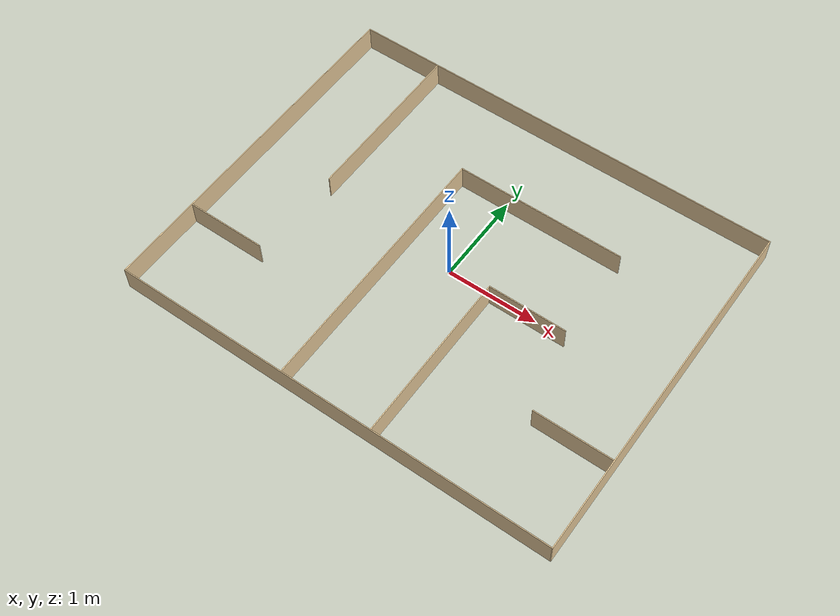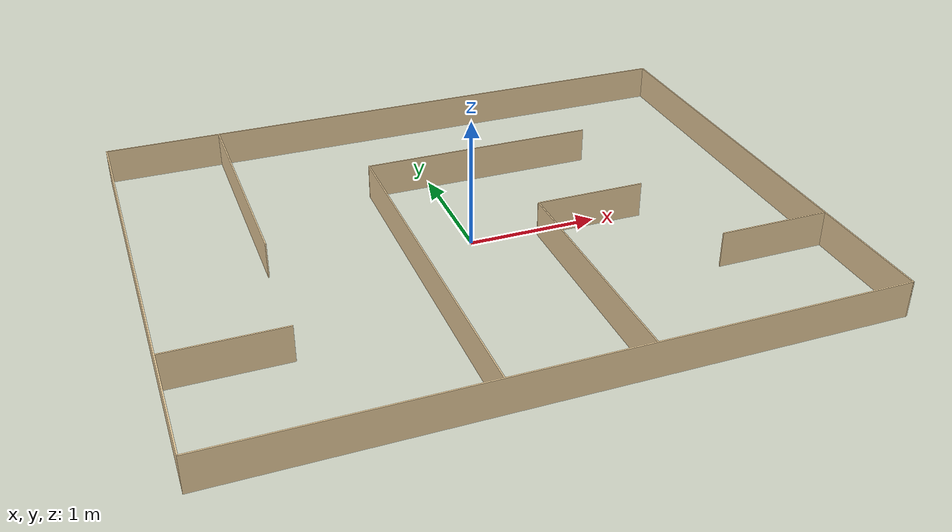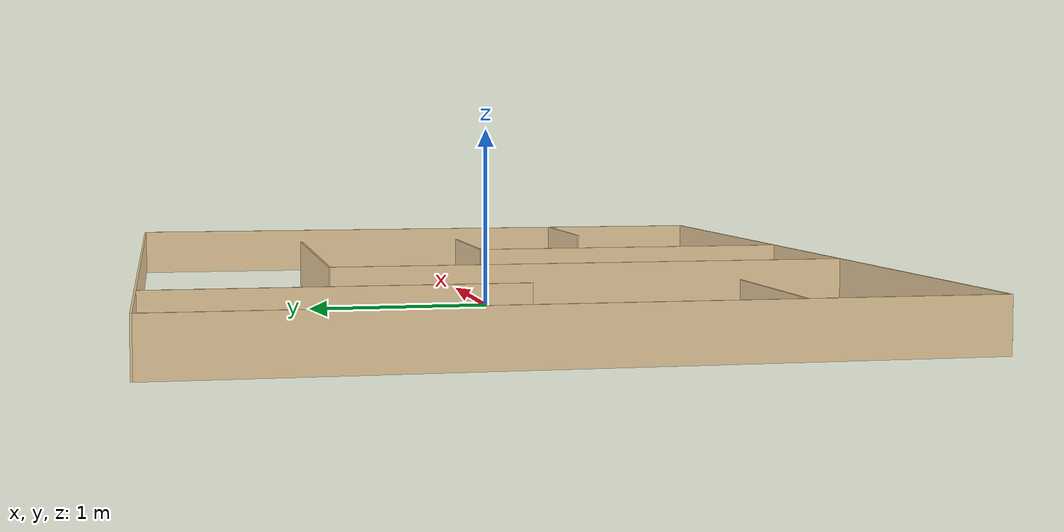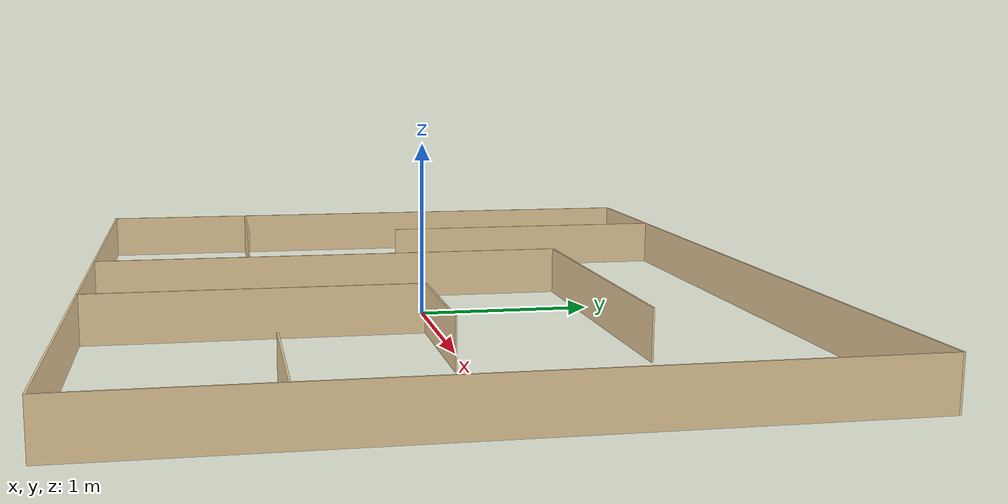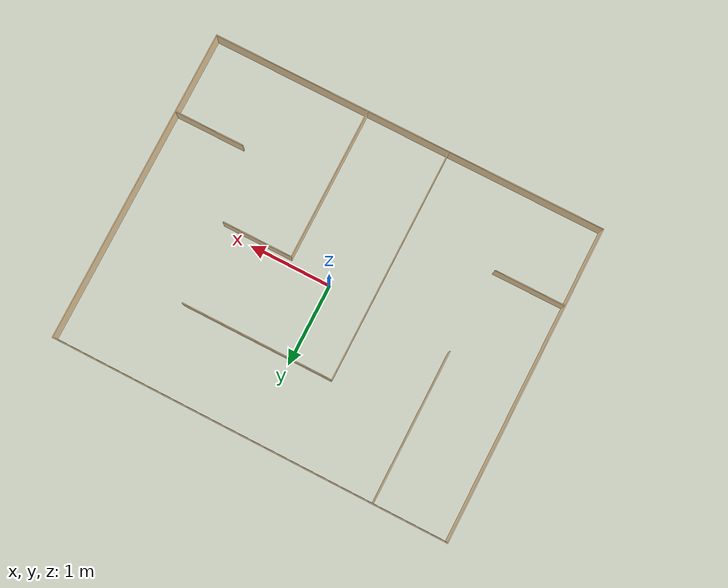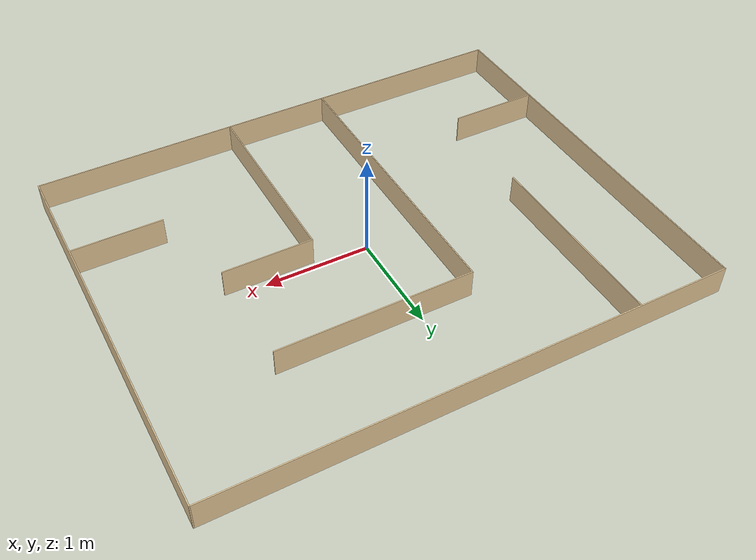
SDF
<?xml version='1.0'?>
<sdf version='1.6'>
  <model name='maze_4'>
    <link name='Wall_0'>
      <pose frame=''>0 -1.925 0 0 -0 0</pose>
      <self_collide>0</self_collide>
      <kinematic>0</kinematic>
      <visual name='Wall_0_Visual'>
        <pose frame=''>0 0 0.14 0 -0 0</pose>
        <geometry>
          <box>
            <size>4.86 0.01 0.28</size>
          </box>
        </geometry>
        <material>
          <script>
            <uri>file://media/materials/scripts/gazebo.material</uri>
            <name>Gazebo/Grey</name>
          </script>
          <ambient>0.921569 0.807843 0.615686 1</ambient>
          <diffuse>0.7 0.7 0.7 1</diffuse>
          <specular>0.01 0.01 0.01 1</specular>
          <emissive>0 0 0 1</emissive>
        </material>
        <cast_shadows>1</cast_shadows>
        <transparency>0</transparency>
      </visual>
      <collision name='Wall_0_Collision'>
        <laser_retro>0</laser_retro>
        <max_contacts>10</max_contacts>
        <pose frame=''>0 0 0.14 0 -0 0</pose>
        <geometry>
          <box>
            <size>4.86 0.01 0.28</size>
          </box>
        </geometry>
        <surface>
          <friction>
            <ode>
              <mu>1</mu>
              <mu2>1</mu2>
              <fdir1>0 0 0</fdir1>
              <slip1>0</slip1>
              <slip2>0</slip2>
            </ode>
            <torsional>
              <coefficient>1</coefficient>
              <patch_radius>0</patch_radius>
              <surface_radius>0</surface_radius>
              <use_patch_radius>1</use_patch_radius>
              <ode>
                <slip>0</slip>
              </ode>
            </torsional>
          </friction>
          <bounce>
            <restitution_coefficient>0</restitution_coefficient>
            <threshold>1e+06</threshold>
          </bounce>
          <contact>
            <collide_without_contact>0</collide_without_contact>
            <collide_without_contact_bitmask>1</collide_without_contact_bitmask>
            <collide_bitmask>1</collide_bitmask>
            <ode>
              <soft_cfm>0</soft_cfm>
              <soft_erp>0.2</soft_erp>
              <kp>1e+13</kp>
              <kd>1</kd>
              <max_vel>0.01</max_vel>
              <min_depth>0</min_depth>
            </ode>
            <bullet>
              <split_impulse>1</split_impulse>
              <split_impulse_penetration_threshold>-0.01</split_impulse_penetration_threshold>
              <soft_cfm>0</soft_cfm>
              <soft_erp>0.2</soft_erp>
              <kp>1e+13</kp>
              <kd>1</kd>
            </bullet>
          </contact>
        </surface>
      </collision>
    </link>
    <link name='Wall_1'>
      <pose frame=''>2.425 0 0 0 -0 1.5708</pose>
      <self_collide>0</self_collide>
      <kinematic>0</kinematic>
      <visual name='Wall_1_Visual'>
        <pose frame=''>0 0 0.14 0 -0 0</pose>
        <geometry>
          <box>
            <size>3.86 0.01 0.28</size>
          </box>
        </geometry>
        <material>
          <script>
            <uri>file://media/materials/scripts/gazebo.material</uri>
            <name>Gazebo/Grey</name>
          </script>
          <ambient>0.921569 0.807843 0.615686 1</ambient>
          <diffuse>0.7 0.7 0.7 1</diffuse>
          <specular>0.01 0.01 0.01 1</specular>
          <emissive>0 0 0 1</emissive>
        </material>
        <cast_shadows>1</cast_shadows>
        <transparency>0</transparency>
      </visual>
      <collision name='Wall_1_Collision'>
        <laser_retro>0</laser_retro>
        <max_contacts>10</max_contacts>
        <pose frame=''>0 0 0.14 0 -0 0</pose>
        <geometry>
          <box>
            <size>3.86 0.01 0.28</size>
          </box>
        </geometry>
        <surface>
          <friction>
            <ode>
              <mu>1</mu>
              <mu2>1</mu2>
              <fdir1>0 0 0</fdir1>
              <slip1>0</slip1>
              <slip2>0</slip2>
            </ode>
            <torsional>
              <coefficient>1</coefficient>
              <patch_radius>0</patch_radius>
              <surface_radius>0</surface_radius>
              <use_patch_radius>1</use_patch_radius>
              <ode>
                <slip>0</slip>
              </ode>
            </torsional>
          </friction>
          <bounce>
            <restitution_coefficient>0</restitution_coefficient>
            <threshold>1e+06</threshold>
          </bounce>
          <contact>
            <collide_without_contact>0</collide_without_contact>
            <collide_without_contact_bitmask>1</collide_without_contact_bitmask>
            <collide_bitmask>1</collide_bitmask>
            <ode>
              <soft_cfm>0</soft_cfm>
              <soft_erp>0.2</soft_erp>
              <kp>1e+13</kp>
              <kd>1</kd>
              <max_vel>0.01</max_vel>
              <min_depth>0</min_depth>
            </ode>
            <bullet>
              <split_impulse>1</split_impulse>
              <split_impulse_penetration_threshold>-0.01</split_impulse_penetration_threshold>
              <soft_cfm>0</soft_cfm>
              <soft_erp>0.2</soft_erp>
              <kp>1e+13</kp>
              <kd>1</kd>
            </bullet>
          </contact>
        </surface>
      </collision>
    </link>
    <link name='Wall_10'>
      <pose frame=''>0.413 0.938753 0 0 -0 0</pose>
      <self_collide>0</self_collide>
      <kinematic>0</kinematic>
      <visual name='Wall_10_Visual'>
        <pose frame=''>0 0 0.14 0 -0 0</pose>
        <geometry>
          <box>
            <size>1.85977 0.01 0.28</size>
          </box>
        </geometry>
        <material>
          <script>
            <uri>file://media/materials/scripts/gazebo.material</uri>
            <name>Gazebo/Grey</name>
          </script>
          <ambient>0.921569 0.807843 0.615686 1</ambient>
          <diffuse>0.7 0.7 0.7 1</diffuse>
          <specular>0.01 0.01 0.01 1</specular>
          <emissive>0 0 0 1</emissive>
        </material>
        <cast_shadows>1</cast_shadows>
        <transparency>0</transparency>
      </visual>
      <collision name='Wall_10_Collision'>
        <laser_retro>0</laser_retro>
        <max_contacts>10</max_contacts>
        <pose frame=''>0 0 0.14 0 -0 0</pose>
        <geometry>
          <box>
            <size>1.85977 0.01 0.28</size>
          </box>
        </geometry>
        <surface>
          <friction>
            <ode>
              <mu>1</mu>
              <mu2>1</mu2>
              <fdir1>0 0 0</fdir1>
              <slip1>0</slip1>
              <slip2>0</slip2>
            </ode>
            <torsional>
              <coefficient>1</coefficient>
              <patch_radius>0</patch_radius>
              <surface_radius>0</surface_radius>
              <use_patch_radius>1</use_patch_radius>
              <ode>
                <slip>0</slip>
              </ode>
            </torsional>
          </friction>
          <bounce>
            <restitution_coefficient>0</restitution_coefficient>
            <threshold>1e+06</threshold>
          </bounce>
          <contact>
            <collide_without_contact>0</collide_without_contact>
            <collide_without_contact_bitmask>1</collide_without_contact_bitmask>
            <collide_bitmask>1</collide_bitmask>
            <ode>
              <soft_cfm>0</soft_cfm>
              <soft_erp>0.2</soft_erp>
              <kp>1e+13</kp>
              <kd>1</kd>
              <max_vel>0.01</max_vel>
              <min_depth>0</min_depth>
            </ode>
            <bullet>
              <split_impulse>1</split_impulse>
              <split_impulse_penetration_threshold>-0.01</split_impulse_penetration_threshold>
              <soft_cfm>0</soft_cfm>
              <soft_erp>0.2</soft_erp>
              <kp>1e+13</kp>
              <kd>1</kd>
            </bullet>
          </contact>
        </surface>
      </collision>
    </link>
    <link name='Wall_12'>
      <pose frame=''>0.509 -0.996252 0 0 -0 1.5708</pose>
      <self_collide>0</self_collide>
      <kinematic>0</kinematic>
      <visual name='Wall_12_Visual'>
        <pose frame=''>0 0 0.14 0 -0 0</pose>
        <geometry>
          <box>
            <size>1.8597 0.01 0.28</size>
          </box>
        </geometry>
        <material>
          <script>
            <uri>file://media/materials/scripts/gazebo.material</uri>
            <name>Gazebo/Grey</name>
          </script>
          <ambient>0.921569 0.807843 0.615686 1</ambient>
          <diffuse>0.7 0.7 0.7 1</diffuse>
          <specular>0.01 0.01 0.01 1</specular>
          <emissive>0 0 0 1</emissive>
        </material>
        <cast_shadows>1</cast_shadows>
        <transparency>0</transparency>
      </visual>
      <collision name='Wall_12_Collision'>
        <laser_retro>0</laser_retro>
        <max_contacts>10</max_contacts>
        <pose frame=''>0 0 0.14 0 -0 0</pose>
        <geometry>
          <box>
            <size>1.8597 0.01 0.28</size>
          </box>
        </geometry>
        <surface>
          <friction>
            <ode>
              <mu>1</mu>
              <mu2>1</mu2>
              <fdir1>0 0 0</fdir1>
              <slip1>0</slip1>
              <slip2>0</slip2>
            </ode>
            <torsional>
              <coefficient>1</coefficient>
              <patch_radius>0</patch_radius>
              <surface_radius>0</surface_radius>
              <use_patch_radius>1</use_patch_radius>
              <ode>
                <slip>0</slip>
              </ode>
            </torsional>
          </friction>
          <bounce>
            <restitution_coefficient>0</restitution_coefficient>
            <threshold>1e+06</threshold>
          </bounce>
          <contact>
            <collide_without_contact>0</collide_without_contact>
            <collide_without_contact_bitmask>1</collide_without_contact_bitmask>
            <collide_bitmask>1</collide_bitmask>
            <ode>
              <soft_cfm>0</soft_cfm>
              <soft_erp>0.2</soft_erp>
              <kp>1e+13</kp>
              <kd>1</kd>
              <max_vel>0.01</max_vel>
              <min_depth>0</min_depth>
            </ode>
            <bullet>
              <split_impulse>1</split_impulse>
              <split_impulse_penetration_threshold>-0.01</split_impulse_penetration_threshold>
              <soft_cfm>0</soft_cfm>
              <soft_erp>0.2</soft_erp>
              <kp>1e+13</kp>
              <kd>1</kd>
            </bullet>
          </contact>
        </surface>
      </collision>
    </link>
    <link name='Wall_13'>
      <pose frame=''>0.934 -0.066769 0 0 -0 0</pose>
      <self_collide>0</self_collide>
      <kinematic>0</kinematic>
      <visual name='Wall_13_Visual'>
        <pose frame=''>0 0 0.14 0 -0 0</pose>
        <geometry>
          <box>
            <size>0.85956 0.01 0.28</size>
          </box>
        </geometry>
        <material>
          <script>
            <uri>file://media/materials/scripts/gazebo.material</uri>
            <name>Gazebo/Grey</name>
          </script>
          <ambient>0.921569 0.807843 0.615686 1</ambient>
          <diffuse>0.7 0.7 0.7 1</diffuse>
          <specular>0.01 0.01 0.01 1</specular>
          <emissive>0 0 0 1</emissive>
        </material>
        <cast_shadows>1</cast_shadows>
        <transparency>0</transparency>
      </visual>
      <collision name='Wall_13_Collision'>
        <laser_retro>0</laser_retro>
        <max_contacts>10</max_contacts>
        <pose frame=''>0 0 0.14 0 -0 0</pose>
        <geometry>
          <box>
            <size>0.85956 0.01 0.28</size>
          </box>
        </geometry>
        <surface>
          <friction>
            <ode>
              <mu>1</mu>
              <mu2>1</mu2>
              <fdir1>0 0 0</fdir1>
              <slip1>0</slip1>
              <slip2>0</slip2>
            </ode>
            <torsional>
              <coefficient>1</coefficient>
              <patch_radius>0</patch_radius>
              <surface_radius>0</surface_radius>
              <use_patch_radius>1</use_patch_radius>
              <ode>
                <slip>0</slip>
              </ode>
            </torsional>
          </friction>
          <bounce>
            <restitution_coefficient>0</restitution_coefficient>
            <threshold>1e+06</threshold>
          </bounce>
          <contact>
            <collide_without_contact>0</collide_without_contact>
            <collide_without_contact_bitmask>1</collide_without_contact_bitmask>
            <collide_bitmask>1</collide_bitmask>
            <ode>
              <soft_cfm>0</soft_cfm>
              <soft_erp>0.2</soft_erp>
              <kp>1e+13</kp>
              <kd>1</kd>
              <max_vel>0.01</max_vel>
              <min_depth>0</min_depth>
            </ode>
            <bullet>
              <split_impulse>1</split_impulse>
              <split_impulse_penetration_threshold>-0.01</split_impulse_penetration_threshold>
              <soft_cfm>0</soft_cfm>
              <soft_erp>0.2</soft_erp>
              <kp>1e+13</kp>
              <kd>1</kd>
            </bullet>
          </contact>
        </surface>
      </collision>
    </link>
    <link name='Wall_15'>
      <pose frame=''>1.997 -0.934 0 0 -0 3.14159</pose>
      <self_collide>0</self_collide>
      <kinematic>0</kinematic>
      <visual name='Wall_15_Visual'>
        <pose frame=''>0 0 0.14 0 -0 0</pose>
        <geometry>
          <box>
            <size>0.860397 0.01 0.28</size>
          </box>
        </geometry>
        <material>
          <script>
            <uri>file://media/materials/scripts/gazebo.material</uri>
            <name>Gazebo/Grey</name>
          </script>
          <ambient>0.921569 0.807843 0.615686 1</ambient>
          <diffuse>0.7 0.7 0.7 1</diffuse>
          <specular>0.01 0.01 0.01 1</specular>
          <emissive>0 0 0 1</emissive>
        </material>
        <cast_shadows>1</cast_shadows>
        <transparency>0</transparency>
      </visual>
      <collision name='Wall_15_Collision'>
        <laser_retro>0</laser_retro>
        <max_contacts>10</max_contacts>
        <pose frame=''>0 0 0.14 0 -0 0</pose>
        <geometry>
          <box>
            <size>0.860397 0.01 0.28</size>
          </box>
        </geometry>
        <surface>
          <friction>
            <ode>
              <mu>1</mu>
              <mu2>1</mu2>
              <fdir1>0 0 0</fdir1>
              <slip1>0</slip1>
              <slip2>0</slip2>
            </ode>
            <torsional>
              <coefficient>1</coefficient>
              <patch_radius>0</patch_radius>
              <surface_radius>0</surface_radius>
              <use_patch_radius>1</use_patch_radius>
              <ode>
                <slip>0</slip>
              </ode>
            </torsional>
          </friction>
          <bounce>
            <restitution_coefficient>0</restitution_coefficient>
            <threshold>1e+06</threshold>
          </bounce>
          <contact>
            <collide_without_contact>0</collide_without_contact>
            <collide_without_contact_bitmask>1</collide_without_contact_bitmask>
            <collide_bitmask>1</collide_bitmask>
            <ode>
              <soft_cfm>0</soft_cfm>
              <soft_erp>0.2</soft_erp>
              <kp>1e+13</kp>
              <kd>1</kd>
              <max_vel>0.01</max_vel>
              <min_depth>0</min_depth>
            </ode>
            <bullet>
              <split_impulse>1</split_impulse>
              <split_impulse_penetration_threshold>-0.01</split_impulse_penetration_threshold>
              <soft_cfm>0</soft_cfm>
              <soft_erp>0.2</soft_erp>
              <kp>1e+13</kp>
              <kd>1</kd>
            </bullet>
          </contact>
        </surface>
      </collision>
    </link>
    <link name='Wall_2'>
      <pose frame=''>0 1.925 0 0 -0 3.14159</pose>
      <self_collide>0</self_collide>
      <kinematic>0</kinematic>
      <visual name='Wall_2_Visual'>
        <pose frame=''>0 0 0.14 0 -0 0</pose>
        <geometry>
          <box>
            <size>4.86028 0.01 0.28</size>
          </box>
        </geometry>
        <material>
          <script>
            <uri>file://media/materials/scripts/gazebo.material</uri>
            <name>Gazebo/Grey</name>
          </script>
          <ambient>0.921569 0.807843 0.615686 1</ambient>
          <diffuse>0.7 0.7 0.7 1</diffuse>
          <specular>0.01 0.01 0.01 1</specular>
          <emissive>0 0 0 1</emissive>
        </material>
        <cast_shadows>1</cast_shadows>
        <transparency>0</transparency>
      </visual>
      <collision name='Wall_2_Collision'>
        <laser_retro>0</laser_retro>
        <max_contacts>10</max_contacts>
        <pose frame=''>0 0 0.14 0 -0 0</pose>
        <geometry>
          <box>
            <size>4.86028 0.01 0.28</size>
          </box>
        </geometry>
        <surface>
          <friction>
            <ode>
              <mu>1</mu>
              <mu2>1</mu2>
              <fdir1>0 0 0</fdir1>
              <slip1>0</slip1>
              <slip2>0</slip2>
            </ode>
            <torsional>
              <coefficient>1</coefficient>
              <patch_radius>0</patch_radius>
              <surface_radius>0</surface_radius>
              <use_patch_radius>1</use_patch_radius>
              <ode>
                <slip>0</slip>
              </ode>
            </torsional>
          </friction>
          <bounce>
            <restitution_coefficient>0</restitution_coefficient>
            <threshold>1e+06</threshold>
          </bounce>
          <contact>
            <collide_without_contact>0</collide_without_contact>
            <collide_without_contact_bitmask>1</collide_without_contact_bitmask>
            <collide_bitmask>1</collide_bitmask>
            <ode>
              <soft_cfm>0</soft_cfm>
              <soft_erp>0.2</soft_erp>
              <kp>1e+13</kp>
              <kd>1</kd>
              <max_vel>0.01</max_vel>
              <min_depth>0</min_depth>
            </ode>
            <bullet>
              <split_impulse>1</split_impulse>
              <split_impulse_penetration_threshold>-0.01</split_impulse_penetration_threshold>
              <soft_cfm>0</soft_cfm>
              <soft_erp>0.2</soft_erp>
              <kp>1e+13</kp>
              <kd>1</kd>
            </bullet>
          </contact>
        </surface>
      </collision>
    </link>
    <link name='Wall_3'>
      <pose frame=''>-2.425 0 0 0 0 -1.5708</pose>
      <self_collide>0</self_collide>
      <kinematic>0</kinematic>
      <visual name='Wall_3_Visual'>
        <pose frame=''>0 0 0.14 0 -0 0</pose>
        <geometry>
          <box>
            <size>3.85967 0.01 0.28</size>
          </box>
        </geometry>
        <material>
          <script>
            <uri>file://media/materials/scripts/gazebo.material</uri>
            <name>Gazebo/Grey</name>
          </script>
          <ambient>0.921569 0.807843 0.615686 1</ambient>
          <diffuse>0.7 0.7 0.7 1</diffuse>
          <specular>0.01 0.01 0.01 1</specular>
          <emissive>0 0 0 1</emissive>
        </material>
        <cast_shadows>1</cast_shadows>
        <transparency>0</transparency>
      </visual>
      <collision name='Wall_3_Collision'>
        <laser_retro>0</laser_retro>
        <max_contacts>10</max_contacts>
        <pose frame=''>0 0 0.14 0 -0 0</pose>
        <geometry>
          <box>
            <size>3.85967 0.01 0.28</size>
          </box>
        </geometry>
        <surface>
          <friction>
            <ode>
              <mu>1</mu>
              <mu2>1</mu2>
              <fdir1>0 0 0</fdir1>
              <slip1>0</slip1>
              <slip2>0</slip2>
            </ode>
            <torsional>
              <coefficient>1</coefficient>
              <patch_radius>0</patch_radius>
              <surface_radius>0</surface_radius>
              <use_patch_radius>1</use_patch_radius>
              <ode>
                <slip>0</slip>
              </ode>
            </torsional>
          </friction>
          <bounce>
            <restitution_coefficient>0</restitution_coefficient>
            <threshold>1e+06</threshold>
          </bounce>
          <contact>
            <collide_without_contact>0</collide_without_contact>
            <collide_without_contact_bitmask>1</collide_without_contact_bitmask>
            <collide_bitmask>1</collide_bitmask>
            <ode>
              <soft_cfm>0</soft_cfm>
              <soft_erp>0.2</soft_erp>
              <kp>1e+13</kp>
              <kd>1</kd>
              <max_vel>0.01</max_vel>
              <min_depth>0</min_depth>
            </ode>
            <bullet>
              <split_impulse>1</split_impulse>
              <split_impulse_penetration_threshold>-0.01</split_impulse_penetration_threshold>
              <soft_cfm>0</soft_cfm>
              <soft_erp>0.2</soft_erp>
              <kp>1e+13</kp>
              <kd>1</kd>
            </bullet>
          </contact>
        </surface>
      </collision>
    </link>
    <link name='Wall_5'>
      <pose frame=''>-1.993 -0.964 0 0 -0 0</pose>
      <self_collide>0</self_collide>
      <kinematic>0</kinematic>
      <visual name='Wall_5_Visual'>
        <pose frame=''>0 0 0.14 0 -0 0</pose>
        <geometry>
          <box>
            <size>0.860284 0.01 0.28</size>
          </box>
        </geometry>
        <material>
          <script>
            <uri>file://media/materials/scripts/gazebo.material</uri>
            <name>Gazebo/Grey</name>
          </script>
          <ambient>0.921569 0.807843 0.615686 1</ambient>
          <diffuse>0.7 0.7 0.7 1</diffuse>
          <specular>0.01 0.01 0.01 1</specular>
          <emissive>0 0 0 1</emissive>
        </material>
        <cast_shadows>1</cast_shadows>
        <transparency>0</transparency>
      </visual>
      <collision name='Wall_5_Collision'>
        <laser_retro>0</laser_retro>
        <max_contacts>10</max_contacts>
        <pose frame=''>0 0 0.14 0 -0 0</pose>
        <geometry>
          <box>
            <size>0.860284 0.01 0.28</size>
          </box>
        </geometry>
        <surface>
          <friction>
            <ode>
              <mu>1</mu>
              <mu2>1</mu2>
              <fdir1>0 0 0</fdir1>
              <slip1>0</slip1>
              <slip2>0</slip2>
            </ode>
            <torsional>
              <coefficient>1</coefficient>
              <patch_radius>0</patch_radius>
              <surface_radius>0</surface_radius>
              <use_patch_radius>1</use_patch_radius>
              <ode>
                <slip>0</slip>
              </ode>
            </torsional>
          </friction>
          <bounce>
            <restitution_coefficient>0</restitution_coefficient>
            <threshold>1e+06</threshold>
          </bounce>
          <contact>
            <collide_without_contact>0</collide_without_contact>
            <collide_without_contact_bitmask>1</collide_without_contact_bitmask>
            <collide_bitmask>1</collide_bitmask>
            <ode>
              <soft_cfm>0</soft_cfm>
              <soft_erp>0.2</soft_erp>
              <kp>1e+13</kp>
              <kd>1</kd>
              <max_vel>0.01</max_vel>
              <min_depth>0</min_depth>
            </ode>
            <bullet>
              <split_impulse>1</split_impulse>
              <split_impulse_penetration_threshold>-0.01</split_impulse_penetration_threshold>
              <soft_cfm>0</soft_cfm>
              <soft_erp>0.2</soft_erp>
              <kp>1e+13</kp>
              <kd>1</kd>
            </bullet>
          </contact>
        </surface>
      </collision>
    </link>
    <link name='Wall_7'>
      <pose frame=''>-1.52173 0.99369 0 0 0 -1.5708</pose>
      <self_collide>0</self_collide>
      <kinematic>0</kinematic>
      <visual name='Wall_7_Visual'>
        <pose frame=''>0 0 0.14 0 -0 0</pose>
        <geometry>
          <box>
            <size>1.86 0.01 0.28</size>
          </box>
        </geometry>
        <material>
          <script>
            <uri>file://media/materials/scripts/gazebo.material</uri>
            <name>Gazebo/Grey</name>
          </script>
          <ambient>0.921569 0.807843 0.615686 1</ambient>
          <diffuse>0.7 0.7 0.7 1</diffuse>
          <specular>0.01 0.01 0.01 1</specular>
          <emissive>0 0 0 1</emissive>
        </material>
        <cast_shadows>1</cast_shadows>
        <transparency>0</transparency>
      </visual>
      <collision name='Wall_7_Collision'>
        <laser_retro>0</laser_retro>
        <max_contacts>10</max_contacts>
        <pose frame=''>0 0 0.14 0 -0 0</pose>
        <geometry>
          <box>
            <size>1.86 0.01 0.28</size>
          </box>
        </geometry>
        <surface>
          <friction>
            <ode>
              <mu>1</mu>
              <mu2>1</mu2>
              <fdir1>0 0 0</fdir1>
              <slip1>0</slip1>
              <slip2>0</slip2>
            </ode>
            <torsional>
              <coefficient>1</coefficient>
              <patch_radius>0</patch_radius>
              <surface_radius>0</surface_radius>
              <use_patch_radius>1</use_patch_radius>
              <ode>
                <slip>0</slip>
              </ode>
            </torsional>
          </friction>
          <bounce>
            <restitution_coefficient>0</restitution_coefficient>
            <threshold>1e+06</threshold>
          </bounce>
          <contact>
            <collide_without_contact>0</collide_without_contact>
            <collide_without_contact_bitmask>1</collide_without_contact_bitmask>
            <collide_bitmask>1</collide_bitmask>
            <ode>
              <soft_cfm>0</soft_cfm>
              <soft_erp>0.2</soft_erp>
              <kp>1e+13</kp>
              <kd>1</kd>
              <max_vel>0.01</max_vel>
              <min_depth>0</min_depth>
            </ode>
            <bullet>
              <split_impulse>1</split_impulse>
              <split_impulse_penetration_threshold>-0.01</split_impulse_penetration_threshold>
              <soft_cfm>0</soft_cfm>
              <soft_erp>0.2</soft_erp>
              <kp>1e+13</kp>
              <kd>1</kd>
            </bullet>
          </contact>
        </surface>
      </collision>
    </link>
    <link name='Wall_9'>
      <pose frame=''>-0.512 -0.494441 0 0 -0 1.5708</pose>
      <self_collide>0</self_collide>
      <kinematic>0</kinematic>
      <visual name='Wall_9_Visual'>
        <pose frame=''>0 0 0.14 0 -0 0</pose>
        <geometry>
          <box>
            <size>2.86 0.01 0.28</size>
          </box>
        </geometry>
        <material>
          <script>
            <uri>file://media/materials/scripts/gazebo.material</uri>
            <name>Gazebo/Grey</name>
          </script>
          <ambient>0.921569 0.807843 0.615686 1</ambient>
          <diffuse>0.7 0.7 0.7 1</diffuse>
          <specular>0.01 0.01 0.01 1</specular>
          <emissive>0 0 0 1</emissive>
        </material>
        <cast_shadows>1</cast_shadows>
        <transparency>0</transparency>
      </visual>
      <collision name='Wall_9_Collision'>
        <laser_retro>0</laser_retro>
        <max_contacts>10</max_contacts>
        <pose frame=''>0 0 0.14 0 -0 0</pose>
        <geometry>
          <box>
            <size>2.86 0.01 0.28</size>
          </box>
        </geometry>
        <surface>
          <friction>
            <ode>
              <mu>1</mu>
              <mu2>1</mu2>
              <fdir1>0 0 0</fdir1>
              <slip1>0</slip1>
              <slip2>0</slip2>
            </ode>
            <torsional>
              <coefficient>1</coefficient>
              <patch_radius>0</patch_radius>
              <surface_radius>0</surface_radius>
              <use_patch_radius>1</use_patch_radius>
              <ode>
                <slip>0</slip>
              </ode>
            </torsional>
          </friction>
          <bounce>
            <restitution_coefficient>0</restitution_coefficient>
            <threshold>1e+06</threshold>
          </bounce>
          <contact>
            <collide_without_contact>0</collide_without_contact>
            <collide_without_contact_bitmask>1</collide_without_contact_bitmask>
            <collide_bitmask>1</collide_bitmask>
            <ode>
              <soft_cfm>0</soft_cfm>
              <soft_erp>0.2</soft_erp>
              <kp>1e+13</kp>
              <kd>1</kd>
              <max_vel>0.01</max_vel>
              <min_depth>0</min_depth>
            </ode>
            <bullet>
              <split_impulse>1</split_impulse>
              <split_impulse_penetration_threshold>-0.01</split_impulse_penetration_threshold>
              <soft_cfm>0</soft_cfm>
              <soft_erp>0.2</soft_erp>
              <kp>1e+13</kp>
              <kd>1</kd>
            </bullet>
          </contact>
        </surface>
      </collision>
    </link>
    <static>1</static>
    <allow_auto_disable>1</allow_auto_disable>
  </model>
</sdf>
